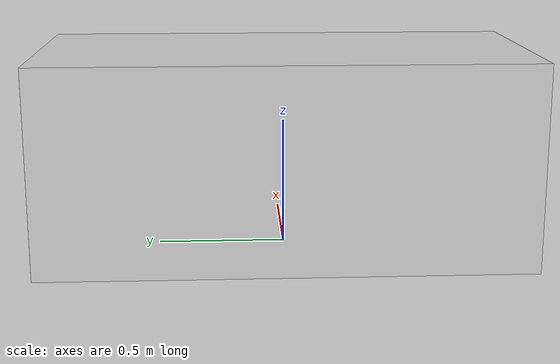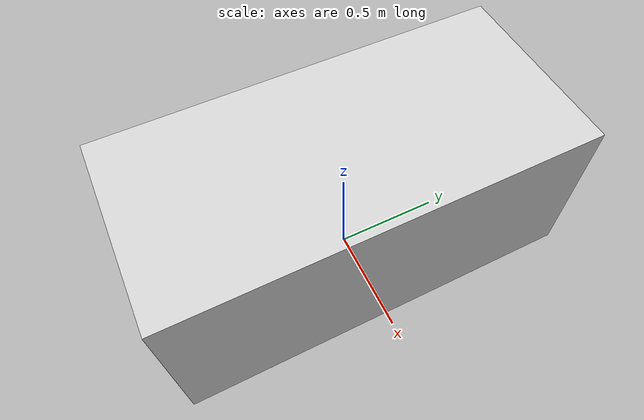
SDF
<?xml version="1.0"?>
<sdf version="1.6">
  <model name="table">
    <link name="1_link">
      <collision name="1_col">
        <geometry>
          <box>
            <size>0.88 1.88 0.79</size>
          </box>
        </geometry>
      </collision>
      <visual name="1_vis">
        <geometry>
          <box>
            <size>0.88 1.88 0.79</size>
          </box>
        </geometry>
        <material>
          <ambient>0.8 0.8 0.8 1</ambient>
        </material>
      </visual>
      <pose>0 0 0.395 0 0 0</pose>
    </link>
    <static>true</static>
  </model>
</sdf>
